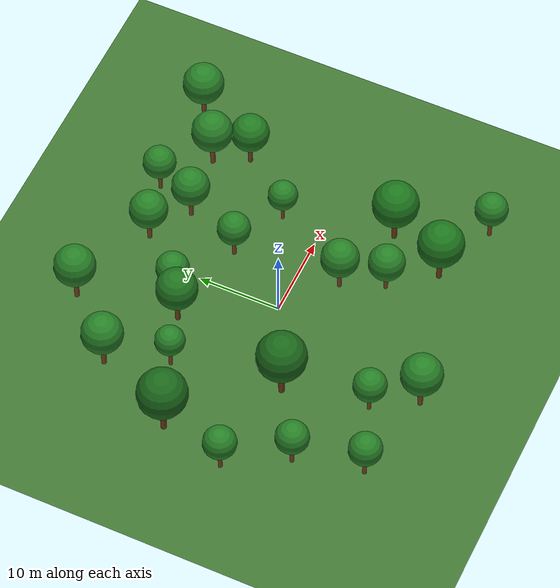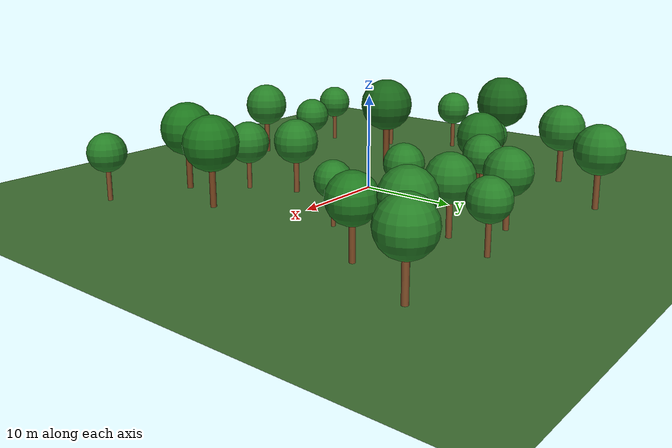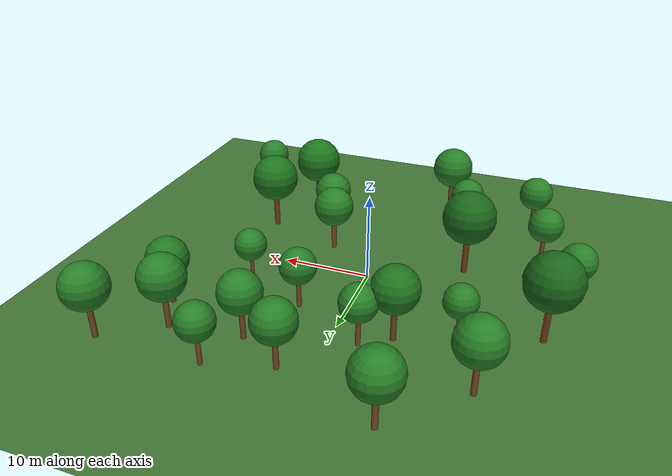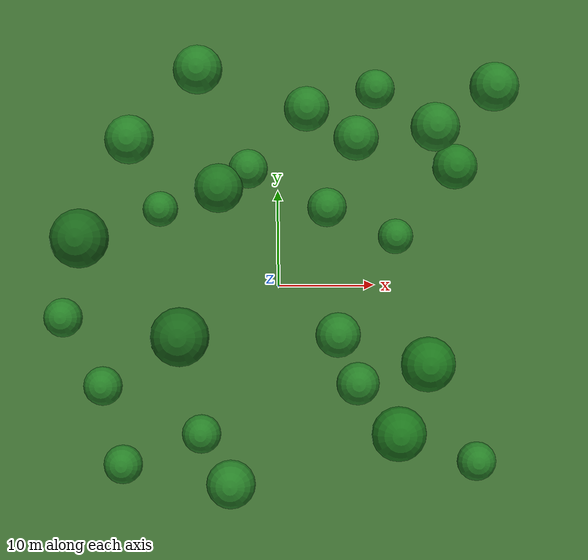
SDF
<?xml version="1.0" ?>
<sdf version="1.8">
  <world name="exia_forest">
    <physics name="1ms" type="ignored">
      <max_step_size>0.001</max_step_size>
      <real_time_factor>1.0</real_time_factor>
    </physics>

    <plugin filename="gz-sim-physics-system" name="gz::sim::systems::Physics"/>
    <plugin filename="gz-sim-user-commands-system" name="gz::sim::systems::UserCommands"/>
    <plugin filename="gz-sim-scene-broadcaster-system" name="gz::sim::systems::SceneBroadcaster"/>
    <plugin filename="gz-sim-contact-system" name="gz::sim::systems::Contact"/>
    <plugin filename="gz-sim-sensors-system" name="gz::sim::systems::Sensors">
      <render_engine>ogre2</render_engine>
    </plugin>
    <plugin filename="gz-sim-imu-system" name="gz::sim::systems::Imu"/>

    <gui fullscreen="0">
      <plugin filename="GzScene3D" name="3D View">
        <gz-gui>
          <title>3D View</title>
          <property type="bool" key="showTitleBar">false</property>
        </gz-gui>
        <engine>ogre2</engine>
        <scene>scene</scene>
        <ambient_light>0.4 0.4 0.4</ambient_light>
        <background_color>0.6 0.8 0.95</background_color>
        <camera_pose>0 -20 15 0 0.6 1.57</camera_pose>
      </plugin>
      <plugin filename="WorldControl" name="World control">
        <gz-gui><title>World control</title></gz-gui>
        <play_pause>true</play_pause>
        <step>true</step>
      </plugin>
      <plugin filename="WorldStats" name="World stats">
        <gz-gui><title>World stats</title></gz-gui>
        <sim_time>true</sim_time>
        <real_time>true</real_time>
        <real_time_factor>true</real_time_factor>
      </plugin>
    </gui>

    <light type="directional" name="sun">
      <cast_shadows>true</cast_shadows>
      <pose>0 0 50 0 0 0</pose>
      <diffuse>0.9 0.9 0.8 1</diffuse>
      <specular>0.3 0.3 0.3 1</specular>
      <attenuation>
        <range>1000</range>
        <constant>0.9</constant>
        <linear>0.01</linear>
        <quadratic>0.001</quadratic>
      </attenuation>
      <direction>-0.3 0.2 -0.9</direction>
    </light>

    <model name="ground_plane">
      <static>true</static>
      <link name="link">
        <collision name="collision">
          <geometry>
            <plane>
              <normal>0 0 1</normal>
              <size>100 100</size>
            </plane>
          </geometry>
        </collision>
        <visual name="visual">
          <geometry>
            <plane>
              <normal>0 0 1</normal>
              <size>100 100</size>
            </plane>
          </geometry>
          <material>
            <ambient>0.2 0.4 0.15 1</ambient>
            <diffuse>0.25 0.45 0.2 1</diffuse>
          </material>
        </visual>
      </link>
    </model>

    <!-- Tree 1 -->
    <model name="tree_01">
      <static>true</static>
      <pose>5 8 0 0 0 0</pose>
      <link name="trunk">
        <collision name="collision"><geometry><cylinder><radius>0.25</radius><length>4</length></cylinder></geometry></collision>
        <visual name="visual">
          <pose>0 0 2 0 0 0</pose>
          <geometry><cylinder><radius>0.25</radius><length>4</length></cylinder></geometry>
          <material><ambient>0.4 0.25 0.1 1</ambient><diffuse>0.5 0.3 0.15 1</diffuse></material>
        </visual>
      </link>
      <link name="canopy">
        <visual name="visual">
          <pose>0 0 5 0 0 0</pose>
          <geometry><sphere><radius>2.0</radius></sphere></geometry>
          <material><ambient>0.1 0.4 0.1 1</ambient><diffuse>0.15 0.5 0.15 1</diffuse></material>
        </visual>
      </link>
    </model>

    <!-- Tree 2 -->
    <model name="tree_02">
      <static>true</static>
      <pose>-6 10 0 0 0 0</pose>
      <link name="trunk">
        <collision name="collision"><geometry><cylinder><radius>0.3</radius><length>5</length></cylinder></geometry></collision>
        <visual name="visual">
          <pose>0 0 2.5 0 0 0</pose>
          <geometry><cylinder><radius>0.3</radius><length>5</length></cylinder></geometry>
          <material><ambient>0.35 0.22 0.08 1</ambient><diffuse>0.45 0.28 0.12 1</diffuse></material>
        </visual>
      </link>
      <link name="canopy">
        <visual name="visual">
          <pose>0 0 6 0 0 0</pose>
          <geometry><sphere><radius>2.5</radius></sphere></geometry>
          <material><ambient>0.08 0.35 0.08 1</ambient><diffuse>0.12 0.45 0.12 1</diffuse></material>
        </visual>
      </link>
    </model>

    <!-- Tree 3 -->
    <model name="tree_03">
      <static>true</static>
      <pose>12 5 0 0 0 0</pose>
      <link name="trunk">
        <collision name="collision"><geometry><cylinder><radius>0.2</radius><length>3.5</length></cylinder></geometry></collision>
        <visual name="visual">
          <pose>0 0 1.75 0 0 0</pose>
          <geometry><cylinder><radius>0.2</radius><length>3.5</length></cylinder></geometry>
          <material><ambient>0.4 0.25 0.1 1</ambient><diffuse>0.5 0.3 0.15 1</diffuse></material>
        </visual>
      </link>
      <link name="canopy">
        <visual name="visual">
          <pose>0 0 4.5 0 0 0</pose>
          <geometry><sphere><radius>1.8</radius></sphere></geometry>
          <material><ambient>0.1 0.4 0.1 1</ambient><diffuse>0.15 0.5 0.15 1</diffuse></material>
        </visual>
      </link>
    </model>

    <!-- Tree 4 -->
    <model name="tree_04">
      <static>true</static>
      <pose>-10 -5 0 0 0 0</pose>
      <link name="trunk">
        <collision name="collision"><geometry><cylinder><radius>0.35</radius><length>6</length></cylinder></geometry></collision>
        <visual name="visual">
          <pose>0 0 3 0 0 0</pose>
          <geometry><cylinder><radius>0.35</radius><length>6</length></cylinder></geometry>
          <material><ambient>0.35 0.2 0.08 1</ambient><diffuse>0.45 0.25 0.1 1</diffuse></material>
        </visual>
      </link>
      <link name="canopy">
        <visual name="visual">
          <pose>0 0 7 0 0 0</pose>
          <geometry><sphere><radius>3.0</radius></sphere></geometry>
          <material><ambient>0.05 0.3 0.05 1</ambient><diffuse>0.1 0.4 0.1 1</diffuse></material>
        </visual>
      </link>
    </model>

    <!-- Tree 5 -->
    <model name="tree_05">
      <static>true</static>
      <pose>8 -10 0 0 0 0</pose>
      <link name="trunk">
        <collision name="collision"><geometry><cylinder><radius>0.25</radius><length>4</length></cylinder></geometry></collision>
        <visual name="visual">
          <pose>0 0 2 0 0 0</pose>
          <geometry><cylinder><radius>0.25</radius><length>4</length></cylinder></geometry>
          <material><ambient>0.4 0.25 0.1 1</ambient><diffuse>0.5 0.3 0.15 1</diffuse></material>
        </visual>
      </link>
      <link name="canopy">
        <visual name="visual">
          <pose>0 0 5 0 0 0</pose>
          <geometry><sphere><radius>2.2</radius></sphere></geometry>
          <material><ambient>0.1 0.4 0.1 1</ambient><diffuse>0.15 0.5 0.15 1</diffuse></material>
        </visual>
      </link>
    </model>

    <!-- Tree 6 -->
    <model name="tree_06">
      <static>true</static>
      <pose>-15 15 0 0 0 0</pose>
      <link name="trunk">
        <collision name="collision"><geometry><cylinder><radius>0.3</radius><length>5</length></cylinder></geometry></collision>
        <visual name="visual">
          <pose>0 0 2.5 0 0 0</pose>
          <geometry><cylinder><radius>0.3</radius><length>5</length></cylinder></geometry>
          <material><ambient>0.4 0.25 0.1 1</ambient><diffuse>0.5 0.3 0.15 1</diffuse></material>
        </visual>
      </link>
      <link name="canopy">
        <visual name="visual">
          <pose>0 0 6 0 0 0</pose>
          <geometry><sphere><radius>2.5</radius></sphere></geometry>
          <material><ambient>0.1 0.4 0.1 1</ambient><diffuse>0.15 0.5 0.15 1</diffuse></material>
        </visual>
      </link>
    </model>

    <!-- Tree 7 -->
    <model name="tree_07">
      <static>true</static>
      <pose>18 12 0 0 0 0</pose>
      <link name="trunk">
        <collision name="collision"><geometry><cylinder><radius>0.28</radius><length>4.5</length></cylinder></geometry></collision>
        <visual name="visual">
          <pose>0 0 2.25 0 0 0</pose>
          <geometry><cylinder><radius>0.28</radius><length>4.5</length></cylinder></geometry>
          <material><ambient>0.38 0.23 0.09 1</ambient><diffuse>0.48 0.28 0.13 1</diffuse></material>
        </visual>
      </link>
      <link name="canopy">
        <visual name="visual">
          <pose>0 0 5.5 0 0 0</pose>
          <geometry><sphere><radius>2.3</radius></sphere></geometry>
          <material><ambient>0.08 0.38 0.08 1</ambient><diffuse>0.13 0.48 0.13 1</diffuse></material>
        </visual>
      </link>
    </model>

    <!-- Tree 8 -->
    <model name="tree_08">
      <static>true</static>
      <pose>-8 -15 0 0 0 0</pose>
      <link name="trunk">
        <collision name="collision"><geometry><cylinder><radius>0.22</radius><length>3.8</length></cylinder></geometry></collision>
        <visual name="visual">
          <pose>0 0 1.9 0 0 0</pose>
          <geometry><cylinder><radius>0.22</radius><length>3.8</length></cylinder></geometry>
          <material><ambient>0.4 0.25 0.1 1</ambient><diffuse>0.5 0.3 0.15 1</diffuse></material>
        </visual>
      </link>
      <link name="canopy">
        <visual name="visual">
          <pose>0 0 4.8 0 0 0</pose>
          <geometry><sphere><radius>2.0</radius></sphere></geometry>
          <material><ambient>0.1 0.4 0.1 1</ambient><diffuse>0.15 0.5 0.15 1</diffuse></material>
        </visual>
      </link>
    </model>

    <!-- Tree 9 -->
    <model name="tree_09">
      <static>true</static>
      <pose>15 -8 0 0 0 0</pose>
      <link name="trunk">
        <collision name="collision"><geometry><cylinder><radius>0.32</radius><length>5.5</length></cylinder></geometry></collision>
        <visual name="visual">
          <pose>0 0 2.75 0 0 0</pose>
          <geometry><cylinder><radius>0.32</radius><length>5.5</length></cylinder></geometry>
          <material><ambient>0.36 0.21 0.07 1</ambient><diffuse>0.46 0.26 0.11 1</diffuse></material>
        </visual>
      </link>
      <link name="canopy">
        <visual name="visual">
          <pose>0 0 6.5 0 0 0</pose>
          <geometry><sphere><radius>2.8</radius></sphere></geometry>
          <material><ambient>0.07 0.36 0.07 1</ambient><diffuse>0.11 0.46 0.11 1</diffuse></material>
        </visual>
      </link>
    </model>

    <!-- Tree 10 -->
    <model name="tree_10">
      <static>true</static>
      <pose>-18 -10 0 0 0 0</pose>
      <link name="trunk">
        <collision name="collision"><geometry><cylinder><radius>0.25</radius><length>4</length></cylinder></geometry></collision>
        <visual name="visual">
          <pose>0 0 2 0 0 0</pose>
          <geometry><cylinder><radius>0.25</radius><length>4</length></cylinder></geometry>
          <material><ambient>0.4 0.25 0.1 1</ambient><diffuse>0.5 0.3 0.15 1</diffuse></material>
        </visual>
      </link>
      <link name="canopy">
        <visual name="visual">
          <pose>0 0 5 0 0 0</pose>
          <geometry><sphere><radius>2.0</radius></sphere></geometry>
          <material><ambient>0.1 0.4 0.1 1</ambient><diffuse>0.15 0.5 0.15 1</diffuse></material>
        </visual>
      </link>
    </model>

    <!-- Tree 11 -->
    <model name="tree_11">
      <static>true</static>
      <pose>3 18 0 0 0 0</pose>
      <link name="trunk">
        <collision name="collision"><geometry><cylinder><radius>0.28</radius><length>4.5</length></cylinder></geometry></collision>
        <visual name="visual">
          <pose>0 0 2.25 0 0 0</pose>
          <geometry><cylinder><radius>0.28</radius><length>4.5</length></cylinder></geometry>
          <material><ambient>0.4 0.25 0.1 1</ambient><diffuse>0.5 0.3 0.15 1</diffuse></material>
        </visual>
      </link>
      <link name="canopy">
        <visual name="visual">
          <pose>0 0 5.5 0 0 0</pose>
          <geometry><sphere><radius>2.3</radius></sphere></geometry>
          <material><ambient>0.1 0.4 0.1 1</ambient><diffuse>0.15 0.5 0.15 1</diffuse></material>
        </visual>
      </link>
    </model>

    <!-- Tree 12 -->
    <model name="tree_12">
      <static>true</static>
      <pose>-5 -20 0 0 0 0</pose>
      <link name="trunk">
        <collision name="collision"><geometry><cylinder><radius>0.3</radius><length>5</length></cylinder></geometry></collision>
        <visual name="visual">
          <pose>0 0 2.5 0 0 0</pose>
          <geometry><cylinder><radius>0.3</radius><length>5</length></cylinder></geometry>
          <material><ambient>0.4 0.25 0.1 1</ambient><diffuse>0.5 0.3 0.15 1</diffuse></material>
        </visual>
      </link>
      <link name="canopy">
        <visual name="visual">
          <pose>0 0 6 0 0 0</pose>
          <geometry><sphere><radius>2.5</radius></sphere></geometry>
          <material><ambient>0.1 0.4 0.1 1</ambient><diffuse>0.15 0.5 0.15 1</diffuse></material>
        </visual>
      </link>
    </model>

    <!-- Tree 13 -->
    <model name="tree_13">
      <static>true</static>
      <pose>20 -18 0 0 0 0</pose>
      <link name="trunk">
        <collision name="collision"><geometry><cylinder><radius>0.25</radius><length>4</length></cylinder></geometry></collision>
        <visual name="visual">
          <pose>0 0 2 0 0 0</pose>
          <geometry><cylinder><radius>0.25</radius><length>4</length></cylinder></geometry>
          <material><ambient>0.4 0.25 0.1 1</ambient><diffuse>0.5 0.3 0.15 1</diffuse></material>
        </visual>
      </link>
      <link name="canopy">
        <visual name="visual">
          <pose>0 0 5 0 0 0</pose>
          <geometry><sphere><radius>2.0</radius></sphere></geometry>
          <material><ambient>0.1 0.4 0.1 1</ambient><diffuse>0.15 0.5 0.15 1</diffuse></material>
        </visual>
      </link>
    </model>

    <!-- Tree 14 -->
    <model name="tree_14">
      <static>true</static>
      <pose>-20 5 0 0 0 0</pose>
      <link name="trunk">
        <collision name="collision"><geometry><cylinder><radius>0.35</radius><length>6</length></cylinder></geometry></collision>
        <visual name="visual">
          <pose>0 0 3 0 0 0</pose>
          <geometry><cylinder><radius>0.35</radius><length>6</length></cylinder></geometry>
          <material><ambient>0.35 0.2 0.08 1</ambient><diffuse>0.45 0.25 0.1 1</diffuse></material>
        </visual>
      </link>
      <link name="canopy">
        <visual name="visual">
          <pose>0 0 7 0 0 0</pose>
          <geometry><sphere><radius>3.0</radius></sphere></geometry>
          <material><ambient>0.05 0.3 0.05 1</ambient><diffuse>0.1 0.4 0.1 1</diffuse></material>
        </visual>
      </link>
    </model>

    <!-- Tree 15 -->
    <model name="tree_15">
      <static>true</static>
      <pose>10 20 0 0 0 0</pose>
      <link name="trunk">
        <collision name="collision"><geometry><cylinder><radius>0.25</radius><length>4</length></cylinder></geometry></collision>
        <visual name="visual">
          <pose>0 0 2 0 0 0</pose>
          <geometry><cylinder><radius>0.25</radius><length>4</length></cylinder></geometry>
          <material><ambient>0.4 0.25 0.1 1</ambient><diffuse>0.5 0.3 0.15 1</diffuse></material>
        </visual>
      </link>
      <link name="canopy">
        <visual name="visual">
          <pose>0 0 5 0 0 0</pose>
          <geometry><sphere><radius>2.0</radius></sphere></geometry>
          <material><ambient>0.1 0.4 0.1 1</ambient><diffuse>0.15 0.5 0.15 1</diffuse></material>
        </visual>
      </link>
    </model>

    <!-- Tree 16 - near goal area but not blocking -->
    <model name="tree_16">
      <static>true</static>
      <pose>22 20 0 0 0 0</pose>
      <link name="trunk">
        <collision name="collision"><geometry><cylinder><radius>0.3</radius><length>5</length></cylinder></geometry></collision>
        <visual name="visual">
          <pose>0 0 2.5 0 0 0</pose>
          <geometry><cylinder><radius>0.3</radius><length>5</length></cylinder></geometry>
          <material><ambient>0.4 0.25 0.1 1</ambient><diffuse>0.5 0.3 0.15 1</diffuse></material>
        </visual>
      </link>
      <link name="canopy">
        <visual name="visual">
          <pose>0 0 6 0 0 0</pose>
          <geometry><sphere><radius>2.5</radius></sphere></geometry>
          <material><ambient>0.1 0.4 0.1 1</ambient><diffuse>0.15 0.5 0.15 1</diffuse></material>
        </visual>
      </link>
    </model>

    <!-- Tree 17 -->
    <model name="tree_17">
      <static>true</static>
      <pose>-12 8 0 0 0 0</pose>
      <link name="trunk">
        <collision name="collision"><geometry><cylinder><radius>0.22</radius><length>3.8</length></cylinder></geometry></collision>
        <visual name="visual">
          <pose>0 0 1.9 0 0 0</pose>
          <geometry><cylinder><radius>0.22</radius><length>3.8</length></cylinder></geometry>
          <material><ambient>0.4 0.25 0.1 1</ambient><diffuse>0.5 0.3 0.15 1</diffuse></material>
        </visual>
      </link>
      <link name="canopy">
        <visual name="visual">
          <pose>0 0 4.8 0 0 0</pose>
          <geometry><sphere><radius>1.8</radius></sphere></geometry>
          <material><ambient>0.1 0.4 0.1 1</ambient><diffuse>0.15 0.5 0.15 1</diffuse></material>
        </visual>
      </link>
    </model>

    <!-- Tree 18 -->
    <model name="tree_18">
      <static>true</static>
      <pose>6 -5 0 0 0 0</pose>
      <link name="trunk">
        <collision name="collision"><geometry><cylinder><radius>0.28</radius><length>4.5</length></cylinder></geometry></collision>
        <visual name="visual">
          <pose>0 0 2.25 0 0 0</pose>
          <geometry><cylinder><radius>0.28</radius><length>4.5</length></cylinder></geometry>
          <material><ambient>0.4 0.25 0.1 1</ambient><diffuse>0.5 0.3 0.15 1</diffuse></material>
        </visual>
      </link>
      <link name="canopy">
        <visual name="visual">
          <pose>0 0 5.5 0 0 0</pose>
          <geometry><sphere><radius>2.3</radius></sphere></geometry>
          <material><ambient>0.1 0.4 0.1 1</ambient><diffuse>0.15 0.5 0.15 1</diffuse></material>
        </visual>
      </link>
    </model>

    <!-- Tree 19 -->
    <model name="tree_19">
      <static>true</static>
      <pose>-3 12 0 0 0 0</pose>
      <link name="trunk">
        <collision name="collision"><geometry><cylinder><radius>0.25</radius><length>4</length></cylinder></geometry></collision>
        <visual name="visual">
          <pose>0 0 2 0 0 0</pose>
          <geometry><cylinder><radius>0.25</radius><length>4</length></cylinder></geometry>
          <material><ambient>0.4 0.25 0.1 1</ambient><diffuse>0.5 0.3 0.15 1</diffuse></material>
        </visual>
      </link>
      <link name="canopy">
        <visual name="visual">
          <pose>0 0 5 0 0 0</pose>
          <geometry><sphere><radius>2.0</radius></sphere></geometry>
          <material><ambient>0.1 0.4 0.1 1</ambient><diffuse>0.15 0.5 0.15 1</diffuse></material>
        </visual>
      </link>
    </model>

    <!-- Tree 20 -->
    <model name="tree_20">
      <static>true</static>
      <pose>16 16 0 0 0 0</pose>
      <link name="trunk">
        <collision name="collision"><geometry><cylinder><radius>0.3</radius><length>5</length></cylinder></geometry></collision>
        <visual name="visual">
          <pose>0 0 2.5 0 0 0</pose>
          <geometry><cylinder><radius>0.3</radius><length>5</length></cylinder></geometry>
          <material><ambient>0.4 0.25 0.1 1</ambient><diffuse>0.5 0.3 0.15 1</diffuse></material>
        </visual>
      </link>
      <link name="canopy">
        <visual name="visual">
          <pose>0 0 6 0 0 0</pose>
          <geometry><sphere><radius>2.5</radius></sphere></geometry>
          <material><ambient>0.1 0.4 0.1 1</ambient><diffuse>0.15 0.5 0.15 1</diffuse></material>
        </visual>
      </link>
    </model>

    <!-- Tree 21 -->
    <model name="tree_21">
      <static>true</static>
      <pose>-16 -18 0 0 0 0</pose>
      <link name="trunk">
        <collision name="collision"><geometry><cylinder><radius>0.25</radius><length>4</length></cylinder></geometry></collision>
        <visual name="visual">
          <pose>0 0 2 0 0 0</pose>
          <geometry><cylinder><radius>0.25</radius><length>4</length></cylinder></geometry>
          <material><ambient>0.4 0.25 0.1 1</ambient><diffuse>0.5 0.3 0.15 1</diffuse></material>
        </visual>
      </link>
      <link name="canopy">
        <visual name="visual">
          <pose>0 0 5 0 0 0</pose>
          <geometry><sphere><radius>2.0</radius></sphere></geometry>
          <material><ambient>0.1 0.4 0.1 1</ambient><diffuse>0.15 0.5 0.15 1</diffuse></material>
        </visual>
      </link>
    </model>

    <!-- Tree 22 -->
    <model name="tree_22">
      <static>true</static>
      <pose>12 -15 0 0 0 0</pose>
      <link name="trunk">
        <collision name="collision"><geometry><cylinder><radius>0.32</radius><length>5.5</length></cylinder></geometry></collision>
        <visual name="visual">
          <pose>0 0 2.75 0 0 0</pose>
          <geometry><cylinder><radius>0.32</radius><length>5.5</length></cylinder></geometry>
          <material><ambient>0.36 0.21 0.07 1</ambient><diffuse>0.46 0.26 0.11 1</diffuse></material>
        </visual>
      </link>
      <link name="canopy">
        <visual name="visual">
          <pose>0 0 6.5 0 0 0</pose>
          <geometry><sphere><radius>2.8</radius></sphere></geometry>
          <material><ambient>0.07 0.36 0.07 1</ambient><diffuse>0.11 0.46 0.11 1</diffuse></material>
        </visual>
      </link>
    </model>

    <!-- Tree 23 -->
    <model name="tree_23">
      <static>true</static>
      <pose>-22 -3 0 0 0 0</pose>
      <link name="trunk">
        <collision name="collision"><geometry><cylinder><radius>0.25</radius><length>4</length></cylinder></geometry></collision>
        <visual name="visual">
          <pose>0 0 2 0 0 0</pose>
          <geometry><cylinder><radius>0.25</radius><length>4</length></cylinder></geometry>
          <material><ambient>0.4 0.25 0.1 1</ambient><diffuse>0.5 0.3 0.15 1</diffuse></material>
        </visual>
      </link>
      <link name="canopy">
        <visual name="visual">
          <pose>0 0 5 0 0 0</pose>
          <geometry><sphere><radius>2.0</radius></sphere></geometry>
          <material><ambient>0.1 0.4 0.1 1</ambient><diffuse>0.15 0.5 0.15 1</diffuse></material>
        </visual>
      </link>
    </model>

    <!-- Tree 24 -->
    <model name="tree_24">
      <static>true</static>
      <pose>8 15 0 0 0 0</pose>
      <link name="trunk">
        <collision name="collision"><geometry><cylinder><radius>0.28</radius><length>4.5</length></cylinder></geometry></collision>
        <visual name="visual">
          <pose>0 0 2.25 0 0 0</pose>
          <geometry><cylinder><radius>0.28</radius><length>4.5</length></cylinder></geometry>
          <material><ambient>0.4 0.25 0.1 1</ambient><diffuse>0.5 0.3 0.15 1</diffuse></material>
        </visual>
      </link>
      <link name="canopy">
        <visual name="visual">
          <pose>0 0 5.5 0 0 0</pose>
          <geometry><sphere><radius>2.3</radius></sphere></geometry>
          <material><ambient>0.1 0.4 0.1 1</ambient><diffuse>0.15 0.5 0.15 1</diffuse></material>
        </visual>
      </link>
    </model>

    <!-- Tree 25 -->
    <model name="tree_25">
      <static>true</static>
      <pose>-8 22 0 0 0 0</pose>
      <link name="trunk">
        <collision name="collision"><geometry><cylinder><radius>0.3</radius><length>5</length></cylinder></geometry></collision>
        <visual name="visual">
          <pose>0 0 2.5 0 0 0</pose>
          <geometry><cylinder><radius>0.3</radius><length>5</length></cylinder></geometry>
          <material><ambient>0.4 0.25 0.1 1</ambient><diffuse>0.5 0.3 0.15 1</diffuse></material>
        </visual>
      </link>
      <link name="canopy">
        <visual name="visual">
          <pose>0 0 6 0 0 0</pose>
          <geometry><sphere><radius>2.5</radius></sphere></geometry>
          <material><ambient>0.1 0.4 0.1 1</ambient><diffuse>0.15 0.5 0.15 1</diffuse></material>
        </visual>
      </link>
    </model>

  </world>
</sdf>
